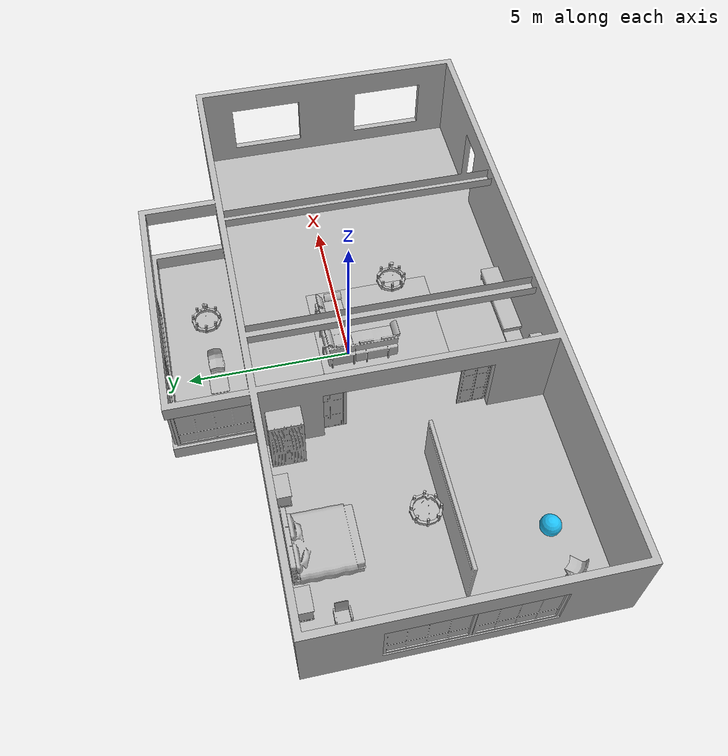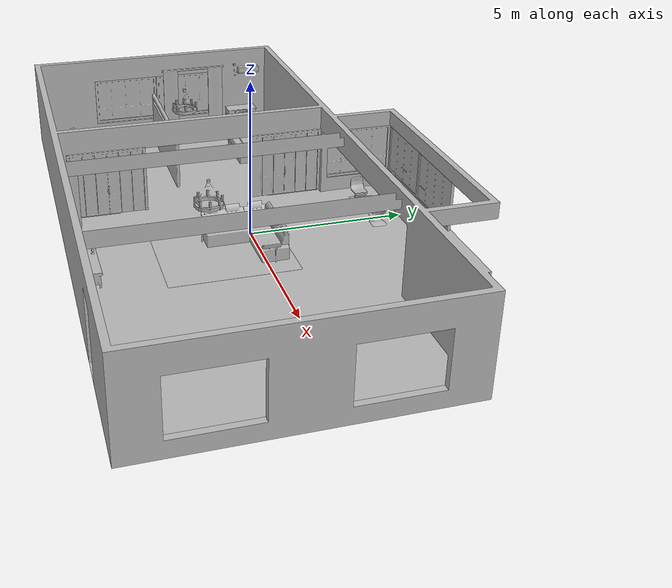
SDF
<sdf version="1.7">
 <world name="default">
  <model name="AirconditionerA_01_001">
   <frame name="aws_robomaker_residential_AirconditionerA_01::__model__" attached_to="aws_robomaker_residential_AirconditionerA_01::link">
    <pose relative_to="__model__">0 0 0 0 -0 0</pose>
   </frame>
   <link name="aws_robomaker_residential_AirconditionerA_01::link">
    <inertial><mass>1</mass></inertial>
    <collision name="collision">
     <geometry>
      <mesh>
       <uri>file://models/aws_robomaker_residential_AirconditionerA_01/meshes/aws_AirconditionerA_01_collision.DAE</uri>
       <scale>1 1 1</scale>
      </mesh>
     </geometry>
    </collision>
    <visual name="visual">
     <geometry>
      <mesh>
       <uri>file://models/aws_robomaker_residential_AirconditionerA_01/meshes/aws_AirconditionerA_01_visual.DAE</uri>
      </mesh>
     </geometry>
     <meta><layer>1</layer></meta>
    </visual>
    <pose relative_to="aws_robomaker_residential_AirconditionerA_01::__model__">0 0 0 0 -0 0</pose>
   </link>
   <static>1</static>
   <pose>-9.19941 2.41123 2.08454 0 -0 0</pose>
  </model>
  <model name="AirconditionerB_01_001">
   <frame name="aws_robomaker_residential_AirconditionerB_01::__model__" attached_to="aws_robomaker_residential_AirconditionerB_01::link">
    <pose relative_to="__model__">0 0 0 0 -0 0</pose>
   </frame>
   <link name="aws_robomaker_residential_AirconditionerB_01::link">
    <inertial>
     <mass>1</mass>
     <inertia><ixx>1</ixx><ixy>0</ixy><ixz>0</ixz><iyy>1</iyy><iyz>0</iyz><izz>1</izz></inertia>
    </inertial>
    <collision name="collision">
     <geometry>
      <mesh>
       <uri>file://models/aws_robomaker_residential_AirconditionerB_01/meshes/aws_AirconditionerB_01_collision.DAE</uri>
       <scale>1 1 1</scale>
      </mesh>
     </geometry>
    </collision>
    <visual name="visual">
     <geometry>
      <mesh>
       <uri>file://models/aws_robomaker_residential_AirconditionerB_01/meshes/aws_AirconditionerB_01_visual.DAE</uri>
      </mesh>
     </geometry>
     <meta><layer>1</layer></meta>
    </visual>
    <pose relative_to="aws_robomaker_residential_AirconditionerB_01::__model__">0 0 0 0 -0 0</pose>
   </link>
   <pose>-2.00466 -5.22661 0.003485 1e-06 -1e-06 -1e-06</pose>
  </model>
  <model name="Ball_01_003">
   <frame name="aws_robomaker_residential_Ball_01::__model__" attached_to="aws_robomaker_residential_Ball_01::link">
    <pose relative_to="__model__">0 0 0 0 -0 0</pose>
   </frame>
   <link name="aws_robomaker_residential_Ball_01::link">
    <inertial>
     <mass>0.12</mass>
     <inertia>
      <ixx>0.030752</ixx>
      <ixy>0</ixy>
      <ixz>0</ixz>
      <iyy>0.030752</iyy>
      <iyz>0</iyz>
      <izz>0.030752</izz>
     </inertia>
    </inertial>
    <collision name="collision">
     <geometry><sphere><radius>0.31</radius></sphere></geometry>
     <surface>
      <friction><ode><mu>0.85</mu><mu2>0.85</mu2></ode></friction>
      <contact><ode><kd>8500</kd><max_vel>5.1</max_vel></ode></contact>
     </surface>
    </collision>
    <visual name="visual">
     <geometry><sphere><radius>0.31</radius></sphere></geometry>
     <material><diffuse>0.12 0.76 0.97 1</diffuse><ambient>0.03 0.21 0.27 1</ambient></material>
     <meta><layer>1</layer></meta>
    </visual>
    <pose relative_to="aws_robomaker_residential_Ball_01::__model__">0 0 0 0 -0 0</pose>
   </link>
   <pose>-6.9455 -4.22174 0.31 0 -0 0</pose>
  </model>
  <model name="Bed_01_001">
   <frame name="aws_robomaker_residential_Bed_01::__model__" attached_to="aws_robomaker_residential_Bed_01::link">
    <pose relative_to="__model__">0 0 0 0 -0 0</pose>
   </frame>
   <link name="aws_robomaker_residential_Bed_01::link">
    <inertial><mass>22.6</mass></inertial>
    <collision name="collision">
     <geometry>
      <mesh>
       <uri>file://models/aws_robomaker_residential_Bed_01/meshes/aws_Bed_01_collision.DAE</uri>
       <scale>1 1 1</scale>
      </mesh>
     </geometry>
    </collision>
    <visual name="visual">
     <geometry>
      <mesh><uri>file://models/aws_robomaker_residential_Bed_01/meshes/aws_Bed_01_visual.DAE</uri></mesh>
     </geometry>
     <meta><layer>1</layer></meta>
    </visual>
    <pose relative_to="aws_robomaker_residential_Bed_01::__model__">0 0 0 0 -0 0</pose>
   </link>
   <static>1</static>
   <pose>-6.16507 2.03056 -1e-05 0 -0 0</pose>
  </model>
  <model name="NightStand_01_001">
   <frame name="aws_robomaker_residential_NightStand_01::__model__" attached_to="aws_robomaker_residential_NightStand_01::link">
    <pose relative_to="__model__">0 0 0 0 -0 0</pose>
   </frame>
   <link name="aws_robomaker_residential_NightStand_01::link">
    <inertial>
     <mass>13.6</mass>
     <inertia><ixx>0.6165</ixx><ixy>0</ixy><ixz>0</ixz><iyy>1.29664</iyy><iyz>0</iyz><izz>0.7706</izz></inertia>
    </inertial>
    <collision name="collision">
     <geometry>
      <mesh>
       <uri>file://models/aws_robomaker_residential_NightStand_01/meshes/aws_NightStand_01_collision.DAE</uri>
       <scale>1 1 1</scale>
      </mesh>
     </geometry>
    </collision>
    <visual name="visual">
     <geometry>
      <mesh>
       <uri>file://models/aws_robomaker_residential_NightStand_01/meshes/aws_NightStand_01_visual.DAE</uri>
      </mesh>
     </geometry>
     <meta><layer>1</layer></meta>
    </visual>
    <pose relative_to="aws_robomaker_residential_NightStand_01::__model__">0 0 0 0 -0 0</pose>
   </link>
   <static>1</static>
   <pose>-7.72551 2.86042 0.005258 -2e-06 0 0</pose>
  </model>
  <model name="NightStand_01_002">
   <frame name="aws_robomaker_residential_NightStand_01::__model__" attached_to="aws_robomaker_residential_NightStand_01::link">
    <pose relative_to="__model__">0 0 0 0 -0 0</pose>
   </frame>
   <link name="aws_robomaker_residential_NightStand_01::link">
    <inertial>
     <mass>13.6</mass>
     <inertia><ixx>0.6165</ixx><ixy>0</ixy><ixz>0</ixz><iyy>1.29664</iyy><iyz>0</iyz><izz>0.7706</izz></inertia>
    </inertial>
    <collision name="collision">
     <geometry>
      <mesh>
       <uri>file://models/aws_robomaker_residential_NightStand_01/meshes/aws_NightStand_01_collision.DAE</uri>
       <scale>1 1 1</scale>
      </mesh>
     </geometry>
    </collision>
    <visual name="visual">
     <geometry>
      <mesh>
       <uri>file://models/aws_robomaker_residential_NightStand_01/meshes/aws_NightStand_01_visual.DAE</uri>
      </mesh>
     </geometry>
     <meta><layer>1</layer></meta>
    </visual>
    <pose relative_to="aws_robomaker_residential_NightStand_01::__model__">0 0 0 0 -0 0</pose>
   </link>
   <static>1</static>
   <pose>-4.40734 2.86042 0.005256 0 2e-06 0</pose>
  </model>
  <model name="ChairA_01_005">
   <frame name="aws_robomaker_residential_ChairA_01::__model__" attached_to="aws_robomaker_residential_ChairA_01::link">
    <pose relative_to="__model__">0 0 0 0 -0 0</pose>
   </frame>
   <link name="aws_robomaker_residential_ChairA_01::link">
    <inertial>
     <mass>7.5</mass>
     <inertia><ixy>0</ixy><ixz>0</ixz><iyz>0</iyz><ixx>0.217</ixx><iyy>0.217</iyy><izz>0.067</izz></inertia>
    </inertial>
    <collision name="collision">
     <geometry>
      <mesh>
       <uri>file://models/aws_robomaker_residential_ChairA_01/meshes/aws_ChairA_01_collision.DAE</uri>
       <scale>1 1 1</scale>
      </mesh>
     </geometry>
    </collision>
    <visual name="visual">
     <geometry>
      <mesh><uri>file://models/aws_robomaker_residential_ChairA_01/meshes/aws_ChairA_01_visual.DAE</uri></mesh>
     </geometry>
     <meta><layer>1</layer></meta>
    </visual>
    <pose relative_to="aws_robomaker_residential_ChairA_01::__model__">0 0 0 0 -0 0</pose>
   </link>
   <pose>-8.27094 1.91665 -6e-06 -3.3e-05 0 -4e-06</pose>
  </model>
  <model name="ChairD_01_001">
   <frame name="aws_robomaker_residential_ChairD_01::__model__" attached_to="aws_robomaker_residential_ChairD_01::link">
    <pose relative_to="__model__">0 0 0 0 -0 0</pose>
   </frame>
   <link name="aws_robomaker_residential_ChairD_01::link">
    <inertial>
     <mass>4.5</mass>
     <inertia><ixy>0</ixy><ixz>0</ixz><iyz>0</iyz><ixx>0.217</ixx><iyy>0.217</iyy><izz>0.067</izz></inertia>
    </inertial>
    <collision name="collision">
     <geometry>
      <mesh>
       <uri>file://models/aws_robomaker_residential_ChairD_01/meshes/aws_ChairD_01_collision.DAE</uri>
       <scale>1 1 1</scale>
      </mesh>
     </geometry>
    </collision>
    <visual name="visual">
     <geometry>
      <mesh><uri>file://models/aws_robomaker_residential_ChairD_01/meshes/aws_ChairD_01_visual.DAE</uri></mesh>
     </geometry>
     <meta><layer>1</layer></meta>
    </visual>
    <pose relative_to="aws_robomaker_residential_ChairD_01::__model__">0 0 0 0 -0 0</pose>
   </link>
   <pose>-1.38078 4.10446 -0.000249 0 0.000976 0</pose>
  </model>
  <model name="ChairD_01_002">
   <frame name="aws_robomaker_residential_ChairD_01::__model__" attached_to="aws_robomaker_residential_ChairD_01::link">
    <pose relative_to="__model__">0 0 0 0 -0 0</pose>
   </frame>
   <link name="aws_robomaker_residential_ChairD_01::link">
    <inertial>
     <mass>4.5</mass>
     <inertia><ixy>0</ixy><ixz>0</ixz><iyz>0</iyz><ixx>0.217</ixx><iyy>0.217</iyy><izz>0.067</izz></inertia>
    </inertial>
    <collision name="collision">
     <geometry>
      <mesh>
       <uri>file://models/aws_robomaker_residential_ChairD_01/meshes/aws_ChairD_01_collision.DAE</uri>
       <scale>1 1 1</scale>
      </mesh>
     </geometry>
    </collision>
    <visual name="visual">
     <geometry>
      <mesh><uri>file://models/aws_robomaker_residential_ChairD_01/meshes/aws_ChairD_01_visual.DAE</uri></mesh>
     </geometry>
     <meta><layer>1</layer></meta>
    </visual>
    <pose relative_to="aws_robomaker_residential_ChairD_01::__model__">0 0 0 0 -0 0</pose>
   </link>
   <pose>0.325214 4.10446 -0.000249 0 0.000976 -3.13874</pose>
  </model>
  <model name="ChairD_01_003">
   <frame name="aws_robomaker_residential_ChairD_01::__model__" attached_to="aws_robomaker_residential_ChairD_01::link">
    <pose relative_to="__model__">0 0 0 0 -0 0</pose>
   </frame>
   <link name="aws_robomaker_residential_ChairD_01::link">
    <inertial>
     <mass>4.5</mass>
     <inertia><ixy>0</ixy><ixz>0</ixz><iyz>0</iyz><ixx>0.217</ixx><iyy>0.217</iyy><izz>0.067</izz></inertia>
    </inertial>
    <collision name="collision">
     <geometry>
      <mesh>
       <uri>file://models/aws_robomaker_residential_ChairD_01/meshes/aws_ChairD_01_collision.DAE</uri>
       <scale>1 1 1</scale>
      </mesh>
     </geometry>
    </collision>
    <visual name="visual">
     <geometry>
      <mesh><uri>file://models/aws_robomaker_residential_ChairD_01/meshes/aws_ChairD_01_visual.DAE</uri></mesh>
     </geometry>
     <meta><layer>1</layer></meta>
    </visual>
    <pose relative_to="aws_robomaker_residential_ChairD_01::__model__">0 0 0 0 -0 0</pose>
   </link>
   <pose>-8.27078 -4.50446 -0.000249 0 0.000976 0.869673</pose>
  </model>
  <model name="Chandelier_01_001">
   <frame name="aws_robomaker_residential_Chandelier_01::__model__" attached_to="aws_robomaker_residential_Chandelier_01::link">
    <pose relative_to="__model__">0 0 0 0 -0 0</pose>
   </frame>
   <link name="aws_robomaker_residential_Chandelier_01::link">
    <inertial><mass>1</mass></inertial>
    <collision name="collision">
     <geometry>
      <mesh>
       <uri>file://models/aws_robomaker_residential_Chandelier_01/meshes/aws_Chandelier_01_collision.DAE</uri>
       <scale>1 1 1</scale>
      </mesh>
     </geometry>
    </collision>
    <visual name="visual">
     <geometry>
      <mesh>
       <uri>file://models/aws_robomaker_residential_Chandelier_01/meshes/aws_Chandelier_01_visual.DAE</uri>
      </mesh>
     </geometry>
     <meta><layer>2</layer></meta>
    </visual>
    <pose relative_to="aws_robomaker_residential_Chandelier_01::__model__">0 0 0 0 -0 0</pose>
   </link>
   <static>1</static>
   <pose>1.22106 4.15574 1.295 0 -0 0</pose>
  </model>
  <model name="Chandelier_01_002">
   <frame name="aws_robomaker_residential_Chandelier_01::__model__" attached_to="aws_robomaker_residential_Chandelier_01::link">
    <pose relative_to="__model__">0 0 0 0 -0 0</pose>
   </frame>
   <link name="aws_robomaker_residential_Chandelier_01::link">
    <inertial><mass>1</mass></inertial>
    <collision name="collision">
     <geometry>
      <mesh>
       <uri>file://models/aws_robomaker_residential_Chandelier_01/meshes/aws_Chandelier_01_collision.DAE</uri>
       <scale>1 1 1</scale>
      </mesh>
     </geometry>
    </collision>
    <visual name="visual">
     <geometry>
      <mesh>
       <uri>file://models/aws_robomaker_residential_Chandelier_01/meshes/aws_Chandelier_01_visual.DAE</uri>
      </mesh>
     </geometry>
     <meta><layer>2</layer></meta>
    </visual>
    <pose relative_to="aws_robomaker_residential_Chandelier_01::__model__">0 0 0 0 -0 0</pose>
   </link>
   <static>1</static>
   <pose>-6.45106 -0.69204 1.81 0 -0 0</pose>
  </model>
  <model name="Chandelier_01_004">
   <frame name="aws_robomaker_residential_Chandelier_01::__model__" attached_to="aws_robomaker_residential_Chandelier_01::link">
    <pose relative_to="__model__">0 0 0 0 -0 0</pose>
   </frame>
   <link name="aws_robomaker_residential_Chandelier_01::link">
    <inertial><mass>1</mass></inertial>
    <collision name="collision">
     <geometry>
      <mesh>
       <uri>file://models/aws_robomaker_residential_Chandelier_01/meshes/aws_Chandelier_01_collision.DAE</uri>
       <scale>1 1 1</scale>
      </mesh>
     </geometry>
    </collision>
    <visual name="visual">
     <geometry>
      <mesh>
       <uri>file://models/aws_robomaker_residential_Chandelier_01/meshes/aws_Chandelier_01_visual.DAE</uri>
      </mesh>
     </geometry>
     <meta><layer>2</layer></meta>
    </visual>
    <pose relative_to="aws_robomaker_residential_Chandelier_01::__model__">0 0 0 0 -0 0</pose>
   </link>
   <static>1</static>
   <pose>1.22106 -1.59204 1.7873 0 -0 0</pose>
  </model>
  <model name="Carpet_01_001">
   <frame name="aws_robomaker_residential_Carpet_01::__model__" attached_to="aws_robomaker_residential_Carpet_01::link">
    <pose relative_to="__model__">0 0 0 0 -0 0</pose>
   </frame>
   <link name="aws_robomaker_residential_Carpet_01::link">
    <inertial><mass>8.1</mass></inertial>
    <collision name="collision">
     <geometry>
      <mesh>
       <uri>file://models/aws_robomaker_residential_Carpet_01/meshes/aws_Carpet_01_collision.DAE</uri>
       <scale>1 1 0.95</scale>
      </mesh>
     </geometry>
     <pose>0 0 -0.01 0 -0 0</pose>
    </collision>
    <visual name="visual">
     <geometry>
      <mesh><uri>file://models/aws_robomaker_residential_Carpet_01/meshes/aws_Carpet_01_visual.DAE</uri></mesh>
     </geometry>
     <meta><layer>1</layer></meta>
    </visual>
    <pose relative_to="aws_robomaker_residential_Carpet_01::__model__">0 0 0 0 -0 0</pose>
   </link>
   <static>1</static>
   <pose>0.78505 -1.10665 0.001106 0 -0 0</pose>
  </model>
  <model name="SecurityCamera_01_001">
   <frame name="aws_robomaker_residential_SecurityCamera_01::__model__" attached_to="aws_robomaker_residential_SecurityCamera_01::link">
    <pose relative_to="__model__">0 0 0 0 -0 0</pose>
   </frame>
   <link name="aws_robomaker_residential_SecurityCamera_01::link">
    <inertial>
     <mass>1</mass>
     <inertia>
      <ixx>18.2222</ixx>
      <ixy>0</ixy>
      <ixz>0</ixz>
      <iyy>18.2222</iyy>
      <iyz>0</iyz>
      <izz>0.0018767</izz>
     </inertia>
    </inertial>
    <collision name="collision">
     <geometry>
      <mesh>
       <uri>file://models/aws_robomaker_residential_SecurityCamera_01/meshes/aws_SecurityCamera_01_collision.DAE</uri>
       <scale>1 1 1</scale>
      </mesh>
     </geometry>
    </collision>
    <visual name="visual">
     <geometry>
      <mesh>
       <uri>file://models/aws_robomaker_residential_SecurityCamera_01/meshes/aws_SecurityCamera_01_visual.DAE</uri>
      </mesh>
     </geometry>
     <meta><layer>2</layer></meta>
    </visual>
    <pose relative_to="aws_robomaker_residential_SecurityCamera_01::__model__">0 0 0 0 -0 0</pose>
   </link>
   <pose>0.842134 -4.99629 0.492564 1e-06 -2e-06 -2.84104</pose>
  </model>
  <model name="Curtain_01_001">
   <frame name="aws_robomaker_residential_Curtain_01::__model__" attached_to="aws_robomaker_residential_Curtain_01::link">
    <pose relative_to="__model__">0 0 0 0 -0 0</pose>
   </frame>
   <link name="aws_robomaker_residential_Curtain_01::link">
    <inertial><mass>1</mass></inertial>
    <collision name="collision">
     <geometry>
      <mesh>
       <uri>file://models/aws_robomaker_residential_Curtain_01/meshes/aws_Curtain_01_collision.DAE</uri>
       <scale>1 1 1</scale>
      </mesh>
     </geometry>
    </collision>
    <visual name="visual">
     <geometry>
      <mesh><uri>file://models/aws_robomaker_residential_Curtain_01/meshes/aws_Curtain_01_visual.DAE</uri></mesh>
     </geometry>
     <meta><layer>2</layer></meta>
    </visual>
    <pose relative_to="aws_robomaker_residential_Curtain_01::__model__">0 0 0 0 -0 0</pose>
   </link>
   <static>1</static>
   <pose>-9.17264 0.20376 0 0 -0 0</pose>
  </model>
  <model name="ReadingDesk_01_001">
   <frame name="aws_robomaker_residential_ReadingDesk_01::__model__" attached_to="aws_robomaker_residential_ReadingDesk_01::link">
    <pose relative_to="__model__">0 0 0 0 -0 0</pose>
   </frame>
   <link name="aws_robomaker_residential_ReadingDesk_01::link">
    <inertial>
     <mass>14.6</mass>
     <inertia><ixx>0.78</ixx><ixy>0</ixy><ixz>0</ixz><iyy>0.273</iyy><iyz>0</iyz><izz>0.57375</izz></inertia>
    </inertial>
    <collision name="collision">
     <geometry>
      <mesh>
       <uri>file://models/aws_robomaker_residential_ReadingDesk_01/meshes/aws_ReadingDesk_01_collision.DAE</uri>
       <scale>1 1 1</scale>
      </mesh>
     </geometry>
    </collision>
    <visual name="visual">
     <geometry>
      <mesh>
       <uri>file://models/aws_robomaker_residential_ReadingDesk_01/meshes/aws_ReadingDesk_01_visual.DAE</uri>
      </mesh>
     </geometry>
     <meta><layer>1</layer></meta>
    </visual>
    <pose relative_to="aws_robomaker_residential_ReadingDesk_01::__model__">0 0 0 0 -0 0</pose>
   </link>
   <pose>-8.98728 2.05706 0.001453 0 8e-06 -0.004626</pose>
  </model>
  <model name="BalconyTable_01_001">
   <frame name="aws_robomaker_residential_BalconyTable_01::__model__" attached_to="aws_robomaker_residential_BalconyTable_01::link">
    <pose relative_to="__model__">0 0 0 0 -0 0</pose>
   </frame>
   <link name="aws_robomaker_residential_BalconyTable_01::link">
    <inertial>
     <mass>15</mass>
     <inertia><ixx>1</ixx><ixy>0</ixy><ixz>0</ixz><iyy>1</iyy><iyz>0</iyz><izz>1</izz></inertia>
    </inertial>
    <collision name="collision">
     <geometry>
      <mesh>
       <uri>file://models/aws_robomaker_residential_BalconyTable_01/meshes/aws_BalconyTable_01_collision.DAE</uri>
       <scale>1 1 1</scale>
      </mesh>
     </geometry>
    </collision>
    <visual name="visual">
     <geometry>
      <mesh>
       <uri>file://models/aws_robomaker_residential_BalconyTable_01/meshes/aws_BalconyTable_01_visual.DAE</uri>
      </mesh>
     </geometry>
     <meta><layer>1</layer></meta>
    </visual>
    <pose relative_to="aws_robomaker_residential_BalconyTable_01::__model__">0 0 0 0 -0 0</pose>
   </link>
   <pose>-0.55624 4.11124 0 -3e-06 0 0</pose>
  </model>
  <model name="FoldingDoor_01_001">
   <frame name="aws_robomaker_residential_FoldingDoor_01::__model__" attached_to="aws_robomaker_residential_FoldingDoor_01::link">
    <pose relative_to="__model__">0 0 0 0 -0 0</pose>
   </frame>
   <link name="aws_robomaker_residential_FoldingDoor_01::link">
    <inertial><mass>1</mass></inertial>
    <collision name="collision">
     <geometry>
      <mesh>
       <uri>file://models/aws_robomaker_residential_FoldingDoor_01/meshes/aws_FoldingDoor_01_collision.DAE</uri>
       <scale>1 1 1</scale>
      </mesh>
     </geometry>
    </collision>
    <visual name="visual">
     <geometry>
      <mesh>
       <uri>file://models/aws_robomaker_residential_FoldingDoor_01/meshes/aws_FoldingDoor_01_visual.DAE</uri>
      </mesh>
     </geometry>
     <meta><layer>2</layer></meta>
    </visual>
    <pose relative_to="aws_robomaker_residential_FoldingDoor_01::__model__">0 0 0 0 -0 0</pose>
   </link>
   <static>1</static>
   <pose>-2.4611 1.84422 0.041881 0 -0 0</pose>
  </model>
  <model name="FoldingDoor_01_002">
   <frame name="aws_robomaker_residential_FoldingDoor_01::__model__" attached_to="aws_robomaker_residential_FoldingDoor_01::link">
    <pose relative_to="__model__">0 0 0 0 -0 0</pose>
   </frame>
   <link name="aws_robomaker_residential_FoldingDoor_01::link">
    <inertial><mass>1</mass></inertial>
    <collision name="collision">
     <geometry>
      <mesh>
       <uri>file://models/aws_robomaker_residential_FoldingDoor_01/meshes/aws_FoldingDoor_01_collision.DAE</uri>
       <scale>1 1 1</scale>
      </mesh>
     </geometry>
    </collision>
    <visual name="visual">
     <geometry>
      <mesh>
       <uri>file://models/aws_robomaker_residential_FoldingDoor_01/meshes/aws_FoldingDoor_01_visual.DAE</uri>
      </mesh>
     </geometry>
     <meta><layer>2</layer></meta>
    </visual>
    <pose relative_to="aws_robomaker_residential_FoldingDoor_01::__model__">0 0 0 0 -0 0</pose>
   </link>
   <static>1</static>
   <pose>-2.4611 -4.05332 0.041881 0 -0 0</pose>
  </model>
  <model name="HouseWallB_01_001">
   <frame name="aws_robomaker_residential_HouseWallB_01::__model__" attached_to="aws_robomaker_residential_HouseWallB_01::link">
    <pose relative_to="__model__">0 0 0 0 -0 0</pose>
   </frame>
   <link name="aws_robomaker_residential_HouseWallB_01::link">
    <inertial><mass>1</mass></inertial>
    <collision name="collision">
     <geometry>
      <mesh>
       <uri>file://models/aws_robomaker_residential_HouseWallB_01/meshes/aws_HouseWallB_01_collision.DAE</uri>
       <scale>1 1 1</scale>
      </mesh>
     </geometry>
    </collision>
    <visual name="visual">
     <geometry>
      <mesh>
       <uri>file://models/aws_robomaker_residential_HouseWallB_01/meshes/aws_HouseWallB_01_visual.DAE</uri>
      </mesh>
     </geometry>
     <meta><layer>2</layer></meta>
    </visual>
    <pose relative_to="aws_robomaker_residential_HouseWallB_01::__model__">0 0 0 0 -0 0</pose>
   </link>
   <static>1</static>
  </model>
  <model name="FloorB_01_001">
   <frame name="aws_robomaker_residential_FloorB_01::__model__" attached_to="aws_robomaker_residential_FloorB_01::link">
    <pose relative_to="__model__">0 0 0 0 -0 0</pose>
   </frame>
   <link name="aws_robomaker_residential_FloorB_01::link">
    <inertial><mass>100</mass></inertial>
    <collision name="collision">
     <geometry>
      <mesh>
       <uri>file://models/aws_robomaker_residential_FloorB_01/meshes/aws_FloorB_01_collision.DAE</uri>
       <scale>1 1 0.9</scale>
      </mesh>
     </geometry>
     <surface><friction><ode><mu>0.6</mu><mu2>0.6</mu2></ode></friction></surface>
    </collision>
    <visual name="visual">
     <geometry>
      <mesh><uri>file://models/aws_robomaker_residential_FloorB_01/meshes/aws_FloorB_01_visual.DAE</uri></mesh>
     </geometry>
     <meta><layer>1</layer></meta>
    </visual>
    <pose relative_to="aws_robomaker_residential_FloorB_01::__model__">0 0 0 0 -0 0</pose>
   </link>
   <static>1</static>
  </model>
  <model name="LightC_01_002">
   <frame name="aws_robomaker_residential_LightC_01::__model__" attached_to="aws_robomaker_residential_LightC_01::link">
    <pose relative_to="__model__">0 0 0 0 -0 0</pose>
   </frame>
   <link name="aws_robomaker_residential_LightC_01::link">
    <inertial><mass>1</mass></inertial>
    <collision name="collision">
     <geometry>
      <mesh>
       <uri>file://models/aws_robomaker_residential_LightC_01/meshes/aws_LightC_01_collision.DAE</uri>
       <scale>1 1 1</scale>
      </mesh>
     </geometry>
    </collision>
    <visual name="visual">
     <geometry>
      <mesh><uri>file://models/aws_robomaker_residential_LightC_01/meshes/aws_LightC_01_visual.DAE</uri></mesh>
     </geometry>
     <meta><layer>2</layer></meta>
    </visual>
    <pose relative_to="aws_robomaker_residential_LightC_01::__model__">0 0 0 0 -0 0</pose>
   </link>
   <static>1</static>
   <pose>-0.138245 -5.44437 2 0 -0 0</pose>
  </model>
  <model name="SofaC_01_001">
   <frame name="aws_robomaker_residential_SofaC_01::__model__" attached_to="aws_robomaker_residential_SofaC_01::link">
    <pose relative_to="__model__">0 0 0 0 -0 0</pose>
   </frame>
   <link name="aws_robomaker_residential_SofaC_01::link">
    <inertial>
     <mass>40</mass>
     <inertia><ixx>1</ixx><ixy>0</ixy><ixz>0</ixz><iyy>1</iyy><iyz>0</iyz><izz>1</izz></inertia>
    </inertial>
    <collision name="collision">
     <geometry>
      <mesh>
       <uri>file://models/aws_robomaker_residential_SofaC_01/meshes/aws_SofaC_01_collision.DAE</uri>
       <scale>1 1 1</scale>
      </mesh>
     </geometry>
    </collision>
    <visual name="visual">
     <geometry>
      <mesh><uri>file://models/aws_robomaker_residential_SofaC_01/meshes/aws_SofaC_01_visual.DAE</uri></mesh>
     </geometry>
     <meta><layer>1</layer></meta>
    </visual>
    <pose relative_to="aws_robomaker_residential_SofaC_01::__model__">0 0 0 0 -0 0</pose>
   </link>
   <pose>0.775872 -0.411147 0.000195 5e-06 -1e-06 0.005593</pose>
  </model>
  <model name="Trash_01_002">
   <frame name="aws_robomaker_residential_Trash_01::__model__" attached_to="aws_robomaker_residential_Trash_01::link">
    <pose relative_to="__model__">0 0 0 0 -0 0</pose>
   </frame>
   <link name="aws_robomaker_residential_Trash_01::link">
    <inertial>
     <mass>0.1</mass>
     <inertia><ixy>0</ixy><ixz>0</ixz><iyz>0</iyz><ixx>0.05288</ixx><iyy>0.05288</iyy><izz>0.09132</izz></inertia>
    </inertial>
    <collision name="collision">
     <geometry>
      <mesh>
       <uri>file://models/aws_robomaker_residential_Trash_01/meshes/aws_Trash_01_collision.DAE</uri>
       <scale>1 1 1</scale>
      </mesh>
     </geometry>
    </collision>
    <visual name="visual">
     <geometry>
      <mesh><uri>file://models/aws_robomaker_residential_Trash_01/meshes/aws_Trash_01_visual.DAE</uri></mesh>
     </geometry>
     <meta><layer>1</layer></meta>
    </visual>
    <pose relative_to="aws_robomaker_residential_Trash_01::__model__">0 0 0 0 -0 0</pose>
   </link>
   <pose>-8.70415 1.00058 0.000904 0 -1e-06 0</pose>
  </model>
  <model name="TVCabinet_01_001">
   <frame name="aws_robomaker_residential_TVCabinet_01::__model__" attached_to="aws_robomaker_residential_TVCabinet_01::link">
    <pose relative_to="__model__">0 0 0 0 -0 0</pose>
   </frame>
   <link name="aws_robomaker_residential_TVCabinet_01::link">
    <inertial>
     <mass>59.2</mass>
     <inertia><ixx>30.4</ixx><ixy>0</ixy><ixz>0</ixz><iyy>2.56</iyy><iyz>0</iyz><izz>31.38</izz></inertia>
    </inertial>
    <collision name="collision">
     <geometry>
      <mesh>
       <uri>file://models/aws_robomaker_residential_TVCabinet_01/meshes/aws_TVCabinet_01_collision.DAE</uri>
       <scale>1 1 1</scale>
      </mesh>
     </geometry>
    </collision>
    <visual name="visual">
     <geometry>
      <mesh>
       <uri>file://models/aws_robomaker_residential_TVCabinet_01/meshes/aws_TVCabinet_01_visual.DAE</uri>
      </mesh>
     </geometry>
     <meta><layer>1</layer></meta>
    </visual>
    <pose relative_to="aws_robomaker_residential_TVCabinet_01::__model__">0 0 0 0 -0 0</pose>
   </link>
   <static>1</static>
   <pose>0.629509 -5.18358 -0.017049 0 -0 1.5792</pose>
  </model>
  <model name="RoomWall_01_001">
   <frame name="aws_robomaker_residential_RoomWall_01::__model__" attached_to="aws_robomaker_residential_RoomWall_01::link">
    <pose relative_to="__model__">0 0 0 0 -0 0</pose>
   </frame>
   <link name="aws_robomaker_residential_RoomWall_01::link">
    <inertial><mass>100</mass></inertial>
    <collision name="collision">
     <geometry>
      <mesh>
       <uri>file://models/aws_robomaker_residential_RoomWall_01/meshes/aws_RoomWall_01_collision.DAE</uri>
       <scale>1 1 1</scale>
      </mesh>
     </geometry>
    </collision>
    <visual name="visual">
     <geometry>
      <mesh><uri>file://models/aws_robomaker_residential_RoomWall_01/meshes/aws_RoomWall_01_visual.DAE</uri></mesh>
     </geometry>
     <meta><layer>2</layer></meta>
    </visual>
    <pose relative_to="aws_robomaker_residential_RoomWall_01::__model__">0 0 0 0 -0 0</pose>
   </link>
   <static>1</static>
   <pose>-6.09755 -1.49618 0.028124 0 -0 0</pose>
  </model>
  <model name="Wardrobe_01_001">
   <frame name="aws_robomaker_residential_Wardrobe_01::__model__" attached_to="aws_robomaker_residential_Wardrobe_01::link">
    <pose relative_to="__model__">0 0 0 0 -0 0</pose>
   </frame>
   <link name="aws_robomaker_residential_Wardrobe_01::link">
    <inertial><mass>51.7</mass></inertial>
    <collision name="collision">
     <geometry>
      <mesh>
       <uri>file://models/aws_robomaker_residential_Wardrobe_01/meshes/aws_Wardrobe_01_collision.DAE</uri>
       <scale>1 1 1</scale>
      </mesh>
     </geometry>
    </collision>
    <visual name="visual">
     <geometry>
      <mesh><uri>file://models/aws_robomaker_residential_Wardrobe_01/meshes/aws_Wardrobe_01_visual.DAE</uri></mesh>
     </geometry>
     <meta><layer>1</layer></meta>
    </visual>
    <pose relative_to="aws_robomaker_residential_Wardrobe_01::__model__">0 0 0 0 -0 0</pose>
   </link>
   <static>1</static>
   <pose>-3.14671 2.4762 0.000704 0 0 -1.56967</pose>
  </model>
  <model name="RoomWindow_01_001">
   <frame name="aws_robomaker_residential_RoomWindow_01::__model__" attached_to="aws_robomaker_residential_RoomWindow_01::link">
    <pose relative_to="__model__">0 0 0 0 -0 0</pose>
   </frame>
   <link name="aws_robomaker_residential_RoomWindow_01::link">
    <inertial><mass>1</mass></inertial>
    <collision name="collision">
     <geometry>
      <mesh>
       <uri>file://models/aws_robomaker_residential_RoomWindow_01/meshes/aws_RoomWindow_01_collision.DAE</uri>
       <scale>1 1 1</scale>
      </mesh>
     </geometry>
    </collision>
    <visual name="visual">
     <geometry>
      <mesh>
       <uri>file://models/aws_robomaker_residential_RoomWindow_01/meshes/aws_RoomWindow_01_visual.DAE</uri>
      </mesh>
     </geometry>
     <meta><layer>2</layer></meta>
    </visual>
    <pose relative_to="aws_robomaker_residential_RoomWindow_01::__model__">0 0 0 0 -0 0</pose>
   </link>
   <static>1</static>
   <pose>-9.4186 -0.026285 0.502739 0 -0 0</pose>
  </model>
  <model name="RoomWindow_01_002">
   <frame name="aws_robomaker_residential_RoomWindow_01::__model__" attached_to="aws_robomaker_residential_RoomWindow_01::link">
    <pose relative_to="__model__">0 0 0 0 -0 0</pose>
   </frame>
   <link name="aws_robomaker_residential_RoomWindow_01::link">
    <inertial><mass>1</mass></inertial>
    <collision name="collision">
     <geometry>
      <mesh>
       <uri>file://models/aws_robomaker_residential_RoomWindow_01/meshes/aws_RoomWindow_01_collision.DAE</uri>
       <scale>1 1 1</scale>
      </mesh>
     </geometry>
    </collision>
    <visual name="visual">
     <geometry>
      <mesh>
       <uri>file://models/aws_robomaker_residential_RoomWindow_01/meshes/aws_RoomWindow_01_visual.DAE</uri>
      </mesh>
     </geometry>
     <meta><layer>2</layer></meta>
    </visual>
    <pose relative_to="aws_robomaker_residential_RoomWindow_01::__model__">0 0 0 0 -0 0</pose>
   </link>
   <static>1</static>
   <pose>-9.4186 -2.37409 0.502739 0 -0 0</pose>
  </model>
  <model name="RoomWindow_01_007">
   <frame name="aws_robomaker_residential_RoomWindow_01::__model__" attached_to="aws_robomaker_residential_RoomWindow_01::link">
    <pose relative_to="__model__">0 0 0 0 -0 0</pose>
   </frame>
   <link name="aws_robomaker_residential_RoomWindow_01::link">
    <inertial><mass>1</mass></inertial>
    <collision name="collision">
     <geometry>
      <mesh>
       <uri>file://models/aws_robomaker_residential_RoomWindow_01/meshes/aws_RoomWindow_01_collision.DAE</uri>
       <scale>1 1 1</scale>
      </mesh>
     </geometry>
    </collision>
    <visual name="visual">
     <geometry>
      <mesh>
       <uri>file://models/aws_robomaker_residential_RoomWindow_01/meshes/aws_RoomWindow_01_visual.DAE</uri>
      </mesh>
     </geometry>
     <meta><layer>2</layer></meta>
    </visual>
    <pose relative_to="aws_robomaker_residential_RoomWindow_01::__model__">0 0 0 0 -0 0</pose>
   </link>
   <static>1</static>
   <pose>1.14095 5.60069 0.502739 0 0 -1.56627</pose>
  </model>
  <model name="RoomWindow_01_008">
   <frame name="aws_robomaker_residential_RoomWindow_01::__model__" attached_to="aws_robomaker_residential_RoomWindow_01::link">
    <pose relative_to="__model__">0 0 0 0 -0 0</pose>
   </frame>
   <link name="aws_robomaker_residential_RoomWindow_01::link">
    <inertial><mass>1</mass></inertial>
    <collision name="collision">
     <geometry>
      <mesh>
       <uri>file://models/aws_robomaker_residential_RoomWindow_01/meshes/aws_RoomWindow_01_collision.DAE</uri>
       <scale>1 1 1</scale>
      </mesh>
     </geometry>
    </collision>
    <visual name="visual">
     <geometry>
      <mesh>
       <uri>file://models/aws_robomaker_residential_RoomWindow_01/meshes/aws_RoomWindow_01_visual.DAE</uri>
      </mesh>
     </geometry>
     <meta><layer>2</layer></meta>
    </visual>
    <pose relative_to="aws_robomaker_residential_RoomWindow_01::__model__">0 0 0 0 -0 0</pose>
   </link>
   <static>1</static>
   <pose>-1.19934 5.60069 0.502739 0 0 -1.56627</pose>
  </model>
  <model name="RoomWindow_01_009">
   <frame name="aws_robomaker_residential_RoomWindow_01::__model__" attached_to="aws_robomaker_residential_RoomWindow_01::link">
    <pose relative_to="__model__">0 0 0 0 -0 0</pose>
   </frame>
   <link name="aws_robomaker_residential_RoomWindow_01::link">
    <inertial><mass>1</mass></inertial>
    <collision name="collision">
     <geometry>
      <mesh>
       <uri>file://models/aws_robomaker_residential_RoomWindow_01/meshes/aws_RoomWindow_01_collision.DAE</uri>
       <scale>1 1 1</scale>
      </mesh>
     </geometry>
    </collision>
    <visual name="visual">
     <geometry>
      <mesh>
       <uri>file://models/aws_robomaker_residential_RoomWindow_01/meshes/aws_RoomWindow_01_visual.DAE</uri>
      </mesh>
     </geometry>
     <meta><layer>2</layer></meta>
    </visual>
    <pose relative_to="aws_robomaker_residential_RoomWindow_01::__model__">0 0 0 0 -0 0</pose>
   </link>
   <static>1</static>
   <pose>-2.39662 4.38761 0.502739 0 -0 0</pose>
  </model>
 </world>
</sdf>
